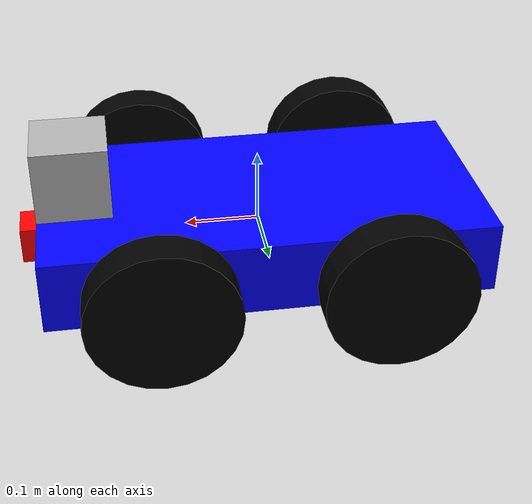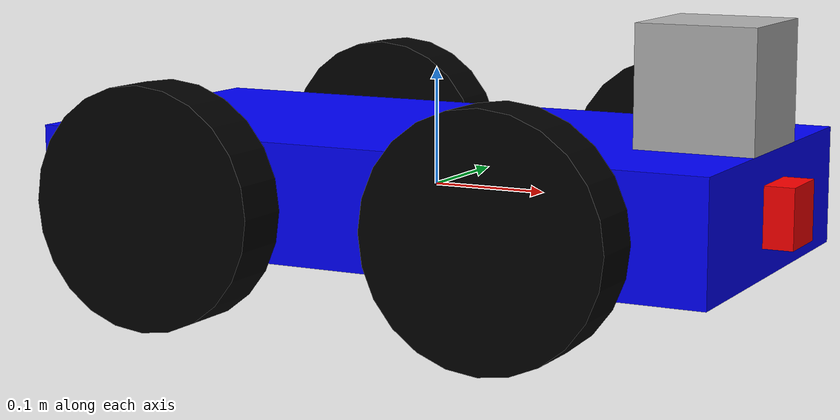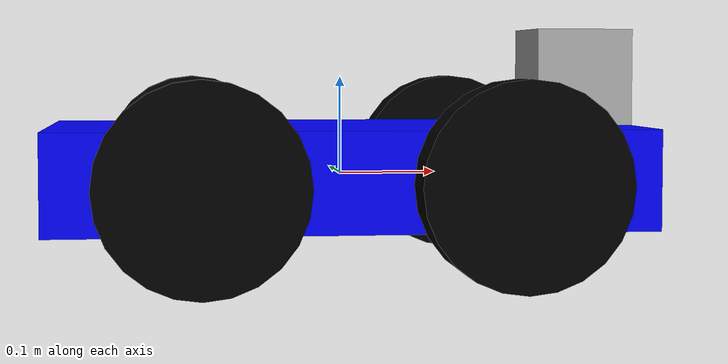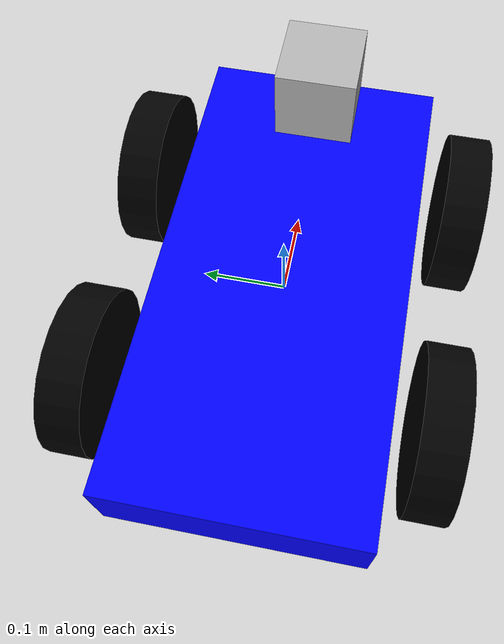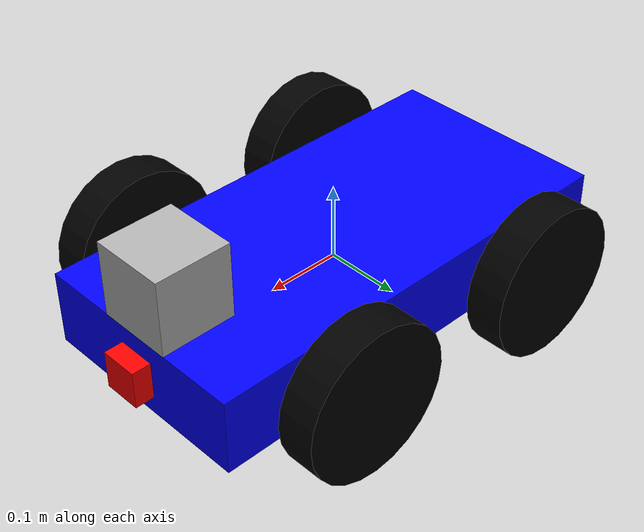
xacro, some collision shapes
<?xml version='1.0'?>

<robot name="rocky_bot" xmlns:xacro="http://www.ros.org/wiki/xacro">

  <xacro:include filename="$(find rocky_bot)/urdf/rocky_bot.gazebo" />

  <!-- Colors in rviz -->
  <material name="red">
    <color rgba="1 0 0 1"/>
  </material>
  <material name="black">
    <color rgba="0 0 0 1"/>
  </material>
  <material name="orange">
    <color rgba="0 0 1 1"/>
  </material>

  <!-- Colors in gazebo -->
  <gazebo reference="left_front_wheel">
    <material>Gazebo/Black</material>
  </gazebo>

  <gazebo reference="left_rear_wheel">
    <material>Gazebo/Black</material>
  </gazebo>

  <gazebo reference="right_front_wheel">
    <material>Gazebo/Black</material>
  </gazebo>

  <gazebo reference="right_rear_wheel">
    <material>Gazebo/Black</material>
  </gazebo>

  <gazebo reference="chassis">
    <material>Gazebo/Orange</material>
  </gazebo>

  <gazebo reference="camera">
    <material>Gazebo/Red</material>
  </gazebo>
  <!-- Colors End -->

  <link name="robot_footprint"></link>

  <joint name="robot_footprint_joint" type="fixed">
    <origin xyz="0 0 0" rpy="0 0 0" />
    <parent link="robot_footprint"/>
    <child link="chassis" />
  </joint>

  <link name='chassis'>
    <pose>0 0 0.1 0 0 0</pose>

    <inertial>
      <mass value="15.0"/>
      <origin xyz="0.0 0 0" rpy=" 0 0 0"/>
      <inertia
          ixx="0.1" ixy="0" ixz="0"
          iyy="0.1" iyz="0"
          izz="0.1"
      />
    </inertial>

    <collision name='collision'>
      <origin xyz="0 0 0" rpy=" 0 0 0"/>
      <geometry>
        <box size=".6 .3 .1"/>
      </geometry>
    </collision>

    <visual name='chassis_visual'>
      <origin xyz="0 0 0" rpy=" 0 0 0"/>
      <geometry>
        <box size=".6 .3 .1"/>
      </geometry>
      <material name="orange"/>
    </visual>
  </link>

  <!-- left front wheel -->
  <link name="left_front_wheel">
    <inertial>
      <origin xyz="0.0 0.0 0.0" rpy="0.0 0.0 0.0"/>
      <mass value="5.0"/>
      <inertia ixx="0.1" ixy="0.0" ixz="0.0" iyy="0.1" iyz="0.0" izz="0.1"/>
    </inertial>
    <visual name="left_front_wheel_visual">
      <origin xyz="0.0 0.0 0.0" rpy="0.0 1.5707 1.5707"/>
      <geometry>
        <cylinder radius="0.1" length="0.05"/>
      </geometry>
      <material name="black"/>
    </visual>
    <collision name="left_front_wheel_collision">
      <origin xyz="0.0 0.0 0.0" rpy="0.0 1.5707 1.5707"/>
      <geometry>
        <cylinder radius="0.1" length="0.05"/>
      </geometry>
    </collision>
  </link>

  <joint name="left_front_wheel_hinge" type="continuous">
    <origin xyz="0.15 0.2 0" rpy="0 0 0"/>
    <parent link="chassis"/>
    <child link="left_front_wheel"/>
    <axis xyz="0 1 0" rpy="0 0 0"/>
    <limit effort="10000" velocity="1000"/>
    <dynamics damping="1.0" friction="1.0"/>
  </joint>

  <!-- left rear wheel -->
  <link name="left_rear_wheel">
    <inertial>
      <origin xyz="0.0 0.0 0.0" rpy="0.0 0.0 0.0"/>
      <mass value="5.0"/>
      <inertia ixx="0.1" ixy="0.0" ixz="0.0" iyy="0.1" iyz="0.0" izz="0.1"/>
    </inertial>
    <visual name="left_rear_wheel_visual">
      <origin xyz="0.0 0.0 0.0" rpy="0.0 1.5707 1.5707"/>
      <geometry>
        <cylinder radius="0.1" length="0.05"/>
      </geometry>
      <material name="black"/>
    </visual>
    <collision name="left_rear_wheel_collision">
      <origin xyz="0.0 0.0 0.0" rpy="0.0 1.5707 1.5707"/>
      <geometry>
        <cylinder radius="0.1" length="0.05"/>
      </geometry>
    </collision>
  </link>

  <joint name="left_rear_wheel_hinge" type="continuous">
    <origin xyz="-0.15 0.2 0" rpy="0 0 0"/>
    <parent link="chassis"/>
    <child link="left_rear_wheel"/>
    <axis xyz="0 1 0" rpy="0 0 0"/>
    <limit effort="10000" velocity="1000"/>
    <dynamics damping="1.0" friction="1.0"/>
  </joint>

  <!-- right front wheel -->
  <link name="right_front_wheel">
    <inertial>
      <origin xyz="0.0 0.0 0.0" rpy="0.0 0.0 0.0"/>
      <mass value="5.0"/>
      <inertia ixx="0.1" ixy="0.0" ixz="0.0" iyy="0.1" iyz="0.0" izz="0.1"/>
    </inertial>
    <visual name="right_front_wheel_visual">
      <origin xyz="0.0 0.0 0.0" rpy="0.0 1.5707 1.5707"/>
      <geometry>
        <cylinder radius="0.1" length="0.05"/>
      </geometry>
      <material name="black"/>
    </visual>
    <collision name="right_front_wheel_collision">
      <origin xyz="0.0 0.0 0.0" rpy="0.0 1.5707 1.5707"/>
      <geometry>
        <cylinder radius="0.1" length="0.05"/>
      </geometry>
    </collision>
  </link>

  <joint name="right_front_wheel_hinge" type="continuous">
    <origin xyz="0.15 -0.2 0" rpy="0 0 0"/>
    <parent link="chassis"/>
    <child link="right_front_wheel"/>
    <axis xyz="0 1 0" rpy="0 0 0"/>
    <limit effort="10000" velocity="1000"/>
    <dynamics damping="1.0" friction="1.0"/>
  </joint>

  <!-- right rear wheel -->
  <link name="right_rear_wheel">
    <inertial>
      <origin xyz="0.0 0.0 0.0" rpy="0.0 0.0 0.0"/>
      <mass value="5.0"/>
      <inertia ixx="0.1" ixy="0.0" ixz="0.0" iyy="0.1" iyz="0.0" izz="0.1"/>
    </inertial>
    <visual name="right_rear_wheel_visual">
      <origin xyz="0.0 0.0 0.0" rpy="0.0 1.5707 1.5707"/>
      <geometry>
        <cylinder radius="0.1" length="0.05"/>
      </geometry>
      <material name="black"/>
    </visual>
    <collision name="right_rear_wheel_collision">
      <origin xyz="0.0 0.0 0.0" rpy="0.0 1.5707 1.5707"/>
      <geometry>
        <cylinder radius="0.1" length="0.05"/>
      </geometry>
    </collision>
  </link>

  <joint name="right_rear_wheel_hinge" type="continuous">
    <origin xyz="-0.15 -0.2 0" rpy="0 0 0"/>
    <parent link="chassis"/>
    <child link="right_rear_wheel"/>
    <axis xyz="0 1 0" rpy="0 0 0"/>
    <limit effort="10000" velocity="1000"/>
    <dynamics damping="1.0" friction="1.0"/>
  </joint>

  <!-- Sensor: Camera -->
  <link name="camera">
    <inertial>
      <origin xyz="0 0 0" rpy="0 0 0"/>
      <mass value="0.1"/>
      <inertia ixx="1e-6" ixy="0.0" ixz="0.0" iyy="1e-6" iyz="0.0" izz="1e-6"/>
    </inertial>
    <visual name="camera_visual">
      <origin xyz="0 0 0" rpy="0 0 0"/>
      <geometry>
        <box size="0.05 0.05 0.05"/>
      </geometry>
      <material name="red"/>
    </visual>
    <collision>
      <origin xyz="0 0 0" rpy="0 0 0"/>
      <geometry>
        <box size="0.05 0.05 0.05"/>
      </geometry>
    </collision>
  </link>

  <joint name="camera_joint" type="fixed">
    <origin xyz="0.3 0 0" rpy="0 0 0"/>
    <parent link="chassis"/>
    <child link="camera"/>
  </joint>>

  <!-- Sensor: Laser RangeFinder -->
  <link name="hokuyo">
    <inertial>
      <origin xyz="0 0 0" rpy="0 0 0"/>
      <mass value="0.1"/>
      <inertia ixx="1e-6" ixy="0.0" ixz="0.0" iyy="1e-6" iyz="0.0" izz="1e-6"/>
    </inertial>
    <visual name="hokuyo_visual">
      <origin xyz="0 0 0" rpy="0 0 0"/>
      <geometry>
        <mesh filename="package://rocky_bot/meshes/hokuyo.dae"/>
      </geometry>
    </visual>
    <collision>
      <origin xyz="0 0 0" rpy="0 0 0"/>
      <geometry>
        <box size="0.1 0.1 0.1"/>
      </geometry>
    </collision>
  </link>

  <joint name="hokuyo_joint" type="fixed">
    <origin xyz=".25 0 .1" rpy="0 0 0"/>
    <parent link="chassis"/>
    <child link="hokuyo"/>
  </joint>

</robot>
